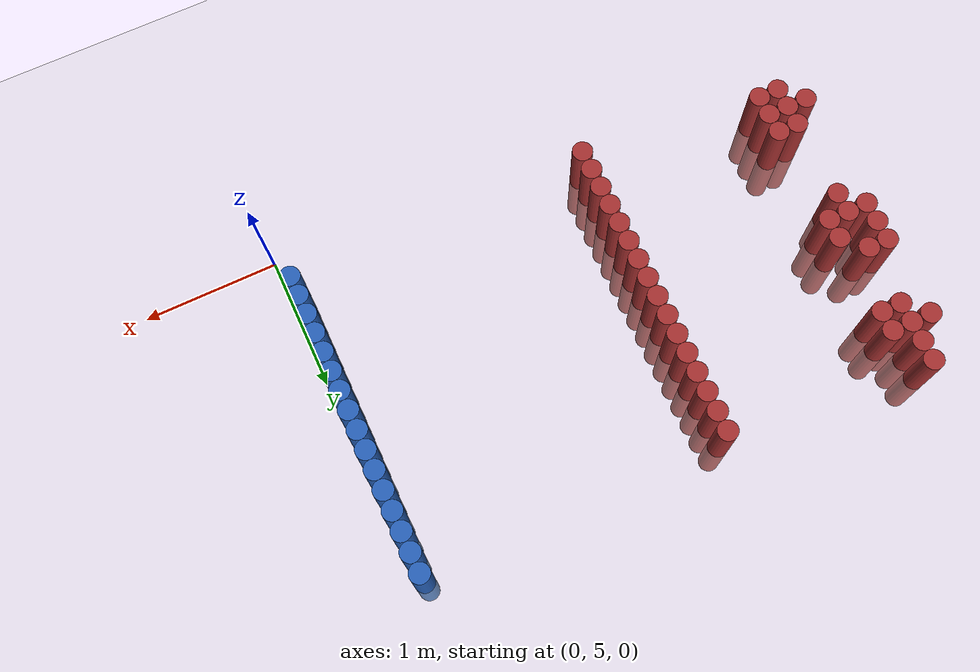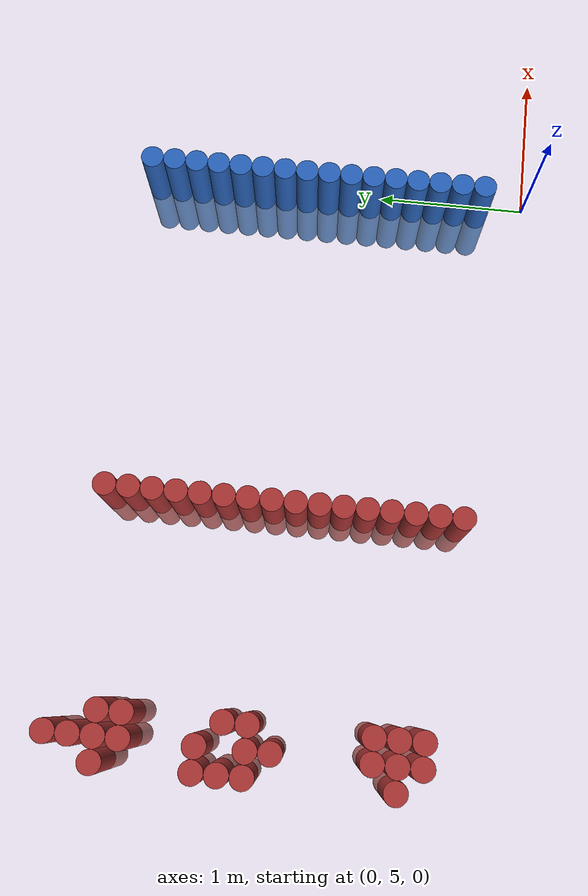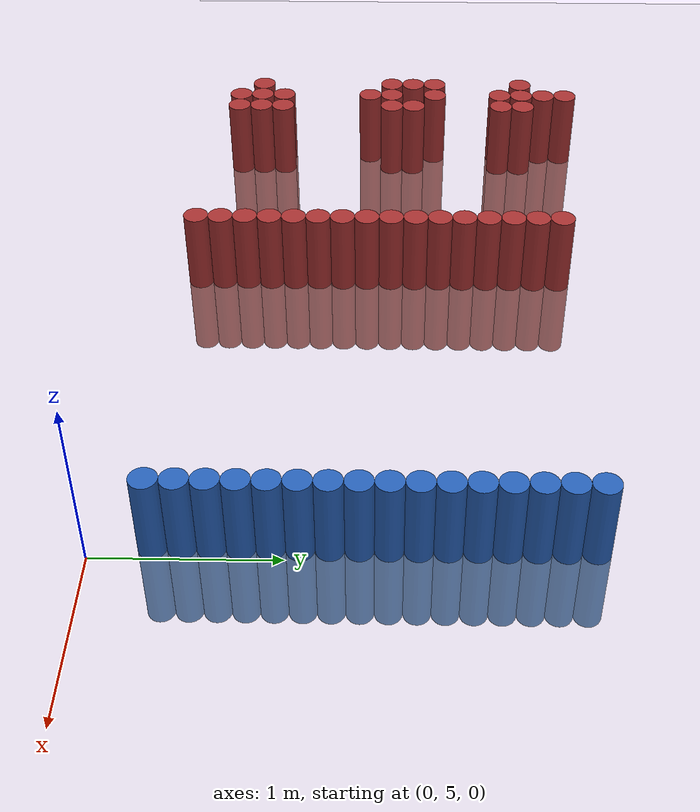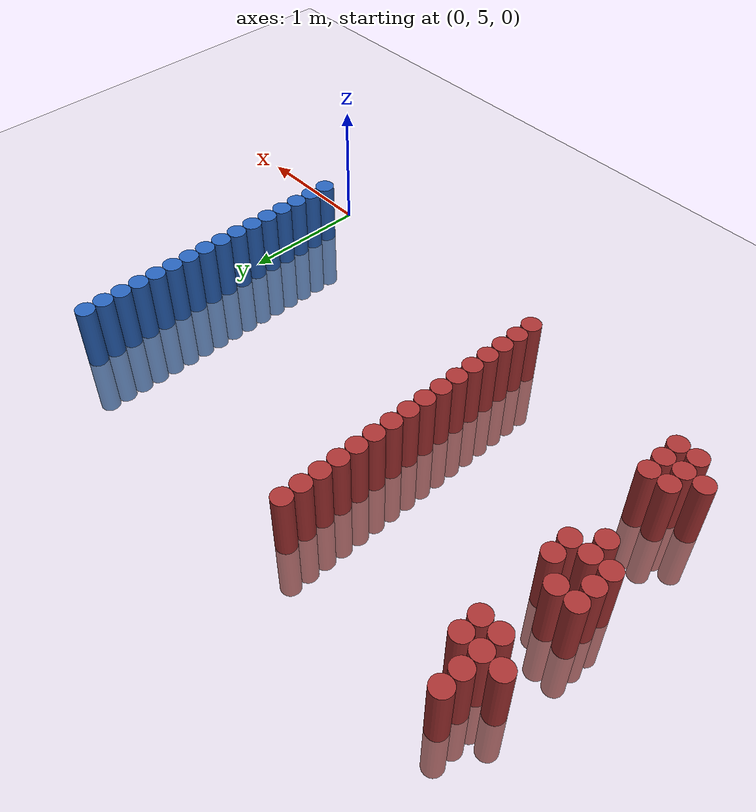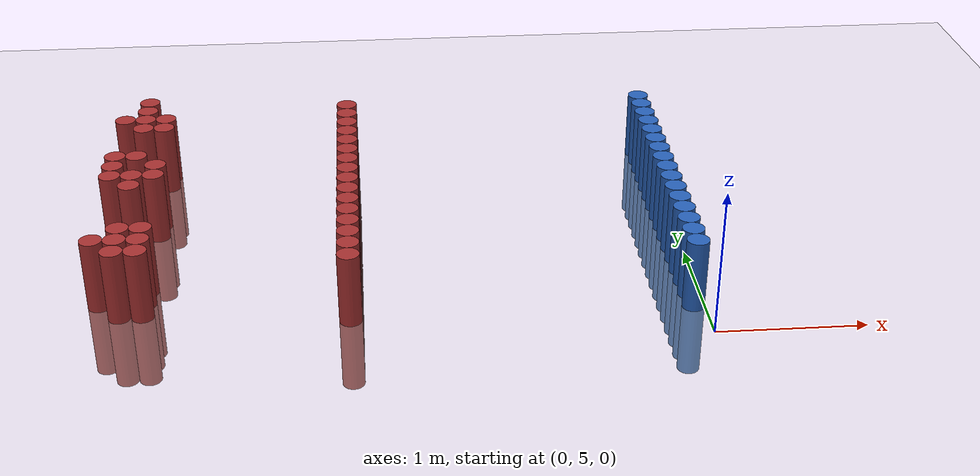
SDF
<sdf version="1.6">
 <world name="default">
  <model name="ground_plane">
   <static>1</static>
   <link name="link">
    <collision name="collision">
     <geometry><plane><normal>0 0 1</normal><size>100 100</size></plane></geometry>
     <surface><friction><ode><mu>100</mu><mu2>50</mu2></ode></friction></surface>
    </collision>
    <visual name="visual">
     <cast_shadows>0</cast_shadows>
     <geometry><plane><normal>0 0 1</normal><size>100 100</size></plane></geometry>
     <material>
      <script><uri>file://media/materials/scripts/gazebo.material</uri><name>Gazebo/Grey</name></script>
     </material>
    </visual>
   </link>
  </model>
  <model name="unit_cylinder_253">
   <static>1</static>
   <pose>-3.975000 5.625000 0.000000 0.000000 0.000000 0.000000</pose>
   <link name="link">
    <inertial>
     <mass>1</mass>
     <inertia><ixx>0.145833</ixx><ixy>0</ixy><ixz>0</ixz><iyy>0.145833</iyy><iyz>0</iyz><izz>0.125</izz></inertia>
    </inertial>
    <collision name="collision">
     <geometry><cylinder><radius>0.075000</radius><length>1</length></cylinder></geometry>
    </collision>
    <visual name="visual">
     <geometry><cylinder><radius>0.075000</radius><length>1</length></cylinder></geometry>
     <material>
      <ambient>0.648000 0.192000 0.192000 1</ambient>
      <diffuse>0.648000 0.192000 0.192000 1</diffuse>
     </material>
     <material>
      <script><name>Gazebo/Grey</name><uri>file://media/materials/scripts/gazebo.material</uri></script>
     </material>
    </visual>
   </link>
  </model>
  <model name="unit_cylinder_254">
   <static>1</static>
   <pose>-3.975000 6.525000 0.000000 0.000000 0.000000 0.000000</pose>
   <link name="link">
    <inertial>
     <mass>1</mass>
     <inertia><ixx>0.145833</ixx><ixy>0</ixy><ixz>0</ixz><iyy>0.145833</iyy><iyz>0</iyz><izz>0.125</izz></inertia>
    </inertial>
    <collision name="collision">
     <geometry><cylinder><radius>0.075000</radius><length>1</length></cylinder></geometry>
    </collision>
    <visual name="visual">
     <geometry><cylinder><radius>0.075000</radius><length>1</length></cylinder></geometry>
     <material>
      <ambient>0.648000 0.192000 0.192000 1</ambient>
      <diffuse>0.648000 0.192000 0.192000 1</diffuse>
     </material>
     <material>
      <script><name>Gazebo/Grey</name><uri>file://media/materials/scripts/gazebo.material</uri></script>
     </material>
    </visual>
   </link>
  </model>
  <model name="unit_cylinder_255">
   <static>1</static>
   <pose>-3.975000 6.675000 0.000000 0.000000 0.000000 0.000000</pose>
   <link name="link">
    <inertial>
     <mass>1</mass>
     <inertia><ixx>0.145833</ixx><ixy>0</ixy><ixz>0</ixz><iyy>0.145833</iyy><iyz>0</iyz><izz>0.125</izz></inertia>
    </inertial>
    <collision name="collision">
     <geometry><cylinder><radius>0.075000</radius><length>1</length></cylinder></geometry>
    </collision>
    <visual name="visual">
     <geometry><cylinder><radius>0.075000</radius><length>1</length></cylinder></geometry>
     <material>
      <ambient>0.648000 0.192000 0.192000 1</ambient>
      <diffuse>0.648000 0.192000 0.192000 1</diffuse>
     </material>
     <material>
      <script><name>Gazebo/Grey</name><uri>file://media/materials/scripts/gazebo.material</uri></script>
     </material>
    </visual>
   </link>
  </model>
  <model name="unit_cylinder_256">
   <static>1</static>
   <pose>-3.975000 6.825000 0.000000 0.000000 0.000000 0.000000</pose>
   <link name="link">
    <inertial>
     <mass>1</mass>
     <inertia><ixx>0.145833</ixx><ixy>0</ixy><ixz>0</ixz><iyy>0.145833</iyy><iyz>0</iyz><izz>0.125</izz></inertia>
    </inertial>
    <collision name="collision">
     <geometry><cylinder><radius>0.075000</radius><length>1</length></cylinder></geometry>
    </collision>
    <visual name="visual">
     <geometry><cylinder><radius>0.075000</radius><length>1</length></cylinder></geometry>
     <material>
      <ambient>0.648000 0.192000 0.192000 1</ambient>
      <diffuse>0.648000 0.192000 0.192000 1</diffuse>
     </material>
     <material>
      <script><name>Gazebo/Grey</name><uri>file://media/materials/scripts/gazebo.material</uri></script>
     </material>
    </visual>
   </link>
  </model>
  <model name="unit_cylinder_257">
   <static>1</static>
   <pose>-3.975000 7.425000 0.000000 0.000000 0.000000 0.000000</pose>
   <link name="link">
    <inertial>
     <mass>1</mass>
     <inertia><ixx>0.145833</ixx><ixy>0</ixy><ixz>0</ixz><iyy>0.145833</iyy><iyz>0</iyz><izz>0.125</izz></inertia>
    </inertial>
    <collision name="collision">
     <geometry><cylinder><radius>0.075000</radius><length>1</length></cylinder></geometry>
    </collision>
    <visual name="visual">
     <geometry><cylinder><radius>0.075000</radius><length>1</length></cylinder></geometry>
     <material>
      <ambient>0.648000 0.192000 0.192000 1</ambient>
      <diffuse>0.648000 0.192000 0.192000 1</diffuse>
     </material>
     <material>
      <script><name>Gazebo/Grey</name><uri>file://media/materials/scripts/gazebo.material</uri></script>
     </material>
    </visual>
   </link>
  </model>
  <model name="unit_cylinder_263">
   <static>1</static>
   <pose>-3.825000 5.475000 0.000000 0.000000 0.000000 0.000000</pose>
   <link name="link">
    <inertial>
     <mass>1</mass>
     <inertia><ixx>0.145833</ixx><ixy>0</ixy><ixz>0</ixz><iyy>0.145833</iyy><iyz>0</iyz><izz>0.125</izz></inertia>
    </inertial>
    <collision name="collision">
     <geometry><cylinder><radius>0.075000</radius><length>1</length></cylinder></geometry>
    </collision>
    <visual name="visual">
     <geometry><cylinder><radius>0.075000</radius><length>1</length></cylinder></geometry>
     <material>
      <ambient>0.648000 0.192000 0.192000 1</ambient>
      <diffuse>0.648000 0.192000 0.192000 1</diffuse>
     </material>
     <material>
      <script><name>Gazebo/Grey</name><uri>file://media/materials/scripts/gazebo.material</uri></script>
     </material>
    </visual>
   </link>
  </model>
  <model name="unit_cylinder_264">
   <static>1</static>
   <pose>-3.825000 5.625000 0.000000 0.000000 0.000000 0.000000</pose>
   <link name="link">
    <inertial>
     <mass>1</mass>
     <inertia><ixx>0.145833</ixx><ixy>0</ixy><ixz>0</ixz><iyy>0.145833</iyy><iyz>0</iyz><izz>0.125</izz></inertia>
    </inertial>
    <collision name="collision">
     <geometry><cylinder><radius>0.075000</radius><length>1</length></cylinder></geometry>
    </collision>
    <visual name="visual">
     <geometry><cylinder><radius>0.075000</radius><length>1</length></cylinder></geometry>
     <material>
      <ambient>0.648000 0.192000 0.192000 1</ambient>
      <diffuse>0.648000 0.192000 0.192000 1</diffuse>
     </material>
     <material>
      <script><name>Gazebo/Grey</name><uri>file://media/materials/scripts/gazebo.material</uri></script>
     </material>
    </visual>
   </link>
  </model>
  <model name="unit_cylinder_265">
   <static>1</static>
   <pose>-3.825000 5.775000 0.000000 0.000000 0.000000 0.000000</pose>
   <link name="link">
    <inertial>
     <mass>1</mass>
     <inertia><ixx>0.145833</ixx><ixy>0</ixy><ixz>0</ixz><iyy>0.145833</iyy><iyz>0</iyz><izz>0.125</izz></inertia>
    </inertial>
    <collision name="collision">
     <geometry><cylinder><radius>0.075000</radius><length>1</length></cylinder></geometry>
    </collision>
    <visual name="visual">
     <geometry><cylinder><radius>0.075000</radius><length>1</length></cylinder></geometry>
     <material>
      <ambient>0.648000 0.192000 0.192000 1</ambient>
      <diffuse>0.648000 0.192000 0.192000 1</diffuse>
     </material>
     <material>
      <script><name>Gazebo/Grey</name><uri>file://media/materials/scripts/gazebo.material</uri></script>
     </material>
    </visual>
   </link>
  </model>
  <model name="unit_cylinder_266">
   <static>1</static>
   <pose>-3.825000 6.375000 0.000000 0.000000 0.000000 0.000000</pose>
   <link name="link">
    <inertial>
     <mass>1</mass>
     <inertia><ixx>0.145833</ixx><ixy>0</ixy><ixz>0</ixz><iyy>0.145833</iyy><iyz>0</iyz><izz>0.125</izz></inertia>
    </inertial>
    <collision name="collision">
     <geometry><cylinder><radius>0.075000</radius><length>1</length></cylinder></geometry>
    </collision>
    <visual name="visual">
     <geometry><cylinder><radius>0.075000</radius><length>1</length></cylinder></geometry>
     <material>
      <ambient>0.648000 0.192000 0.192000 1</ambient>
      <diffuse>0.648000 0.192000 0.192000 1</diffuse>
     </material>
     <material>
      <script><name>Gazebo/Grey</name><uri>file://media/materials/scripts/gazebo.material</uri></script>
     </material>
    </visual>
   </link>
  </model>
  <model name="unit_cylinder_267">
   <static>1</static>
   <pose>-3.825000 6.525000 0.000000 0.000000 0.000000 0.000000</pose>
   <link name="link">
    <inertial>
     <mass>1</mass>
     <inertia><ixx>0.145833</ixx><ixy>0</ixy><ixz>0</ixz><iyy>0.145833</iyy><iyz>0</iyz><izz>0.125</izz></inertia>
    </inertial>
    <collision name="collision">
     <geometry><cylinder><radius>0.075000</radius><length>1</length></cylinder></geometry>
    </collision>
    <visual name="visual">
     <geometry><cylinder><radius>0.075000</radius><length>1</length></cylinder></geometry>
     <material>
      <ambient>0.648000 0.192000 0.192000 1</ambient>
      <diffuse>0.648000 0.192000 0.192000 1</diffuse>
     </material>
     <material>
      <script><name>Gazebo/Grey</name><uri>file://media/materials/scripts/gazebo.material</uri></script>
     </material>
    </visual>
   </link>
  </model>
  <model name="unit_cylinder_268">
   <static>1</static>
   <pose>-3.825000 6.825000 0.000000 0.000000 0.000000 0.000000</pose>
   <link name="link">
    <inertial>
     <mass>1</mass>
     <inertia><ixx>0.145833</ixx><ixy>0</ixy><ixz>0</ixz><iyy>0.145833</iyy><iyz>0</iyz><izz>0.125</izz></inertia>
    </inertial>
    <collision name="collision">
     <geometry><cylinder><radius>0.075000</radius><length>1</length></cylinder></geometry>
    </collision>
    <visual name="visual">
     <geometry><cylinder><radius>0.075000</radius><length>1</length></cylinder></geometry>
     <material>
      <ambient>0.648000 0.192000 0.192000 1</ambient>
      <diffuse>0.648000 0.192000 0.192000 1</diffuse>
     </material>
     <material>
      <script><name>Gazebo/Grey</name><uri>file://media/materials/scripts/gazebo.material</uri></script>
     </material>
    </visual>
   </link>
  </model>
  <model name="unit_cylinder_269">
   <static>1</static>
   <pose>-3.825000 7.275000 0.000000 0.000000 0.000000 0.000000</pose>
   <link name="link">
    <inertial>
     <mass>1</mass>
     <inertia><ixx>0.145833</ixx><ixy>0</ixy><ixz>0</ixz><iyy>0.145833</iyy><iyz>0</iyz><izz>0.125</izz></inertia>
    </inertial>
    <collision name="collision">
     <geometry><cylinder><radius>0.075000</radius><length>1</length></cylinder></geometry>
    </collision>
    <visual name="visual">
     <geometry><cylinder><radius>0.075000</radius><length>1</length></cylinder></geometry>
     <material>
      <ambient>0.648000 0.192000 0.192000 1</ambient>
      <diffuse>0.648000 0.192000 0.192000 1</diffuse>
     </material>
     <material>
      <script><name>Gazebo/Grey</name><uri>file://media/materials/scripts/gazebo.material</uri></script>
     </material>
    </visual>
   </link>
  </model>
  <model name="unit_cylinder_270">
   <static>1</static>
   <pose>-3.825000 7.425000 0.000000 0.000000 0.000000 0.000000</pose>
   <link name="link">
    <inertial>
     <mass>1</mass>
     <inertia><ixx>0.145833</ixx><ixy>0</ixy><ixz>0</ixz><iyy>0.145833</iyy><iyz>0</iyz><izz>0.125</izz></inertia>
    </inertial>
    <collision name="collision">
     <geometry><cylinder><radius>0.075000</radius><length>1</length></cylinder></geometry>
    </collision>
    <visual name="visual">
     <geometry><cylinder><radius>0.075000</radius><length>1</length></cylinder></geometry>
     <material>
      <ambient>0.648000 0.192000 0.192000 1</ambient>
      <diffuse>0.648000 0.192000 0.192000 1</diffuse>
     </material>
     <material>
      <script><name>Gazebo/Grey</name><uri>file://media/materials/scripts/gazebo.material</uri></script>
     </material>
    </visual>
   </link>
  </model>
  <model name="unit_cylinder_271">
   <static>1</static>
   <pose>-3.825000 7.575000 0.000000 0.000000 0.000000 0.000000</pose>
   <link name="link">
    <inertial>
     <mass>1</mass>
     <inertia><ixx>0.145833</ixx><ixy>0</ixy><ixz>0</ixz><iyy>0.145833</iyy><iyz>0</iyz><izz>0.125</izz></inertia>
    </inertial>
    <collision name="collision">
     <geometry><cylinder><radius>0.075000</radius><length>1</length></cylinder></geometry>
    </collision>
    <visual name="visual">
     <geometry><cylinder><radius>0.075000</radius><length>1</length></cylinder></geometry>
     <material>
      <ambient>0.648000 0.192000 0.192000 1</ambient>
      <diffuse>0.648000 0.192000 0.192000 1</diffuse>
     </material>
     <material>
      <script><name>Gazebo/Grey</name><uri>file://media/materials/scripts/gazebo.material</uri></script>
     </material>
    </visual>
   </link>
  </model>
  <model name="unit_cylinder_272">
   <static>1</static>
   <pose>-3.825000 7.725000 0.000000 0.000000 0.000000 0.000000</pose>
   <link name="link">
    <inertial>
     <mass>1</mass>
     <inertia><ixx>0.145833</ixx><ixy>0</ixy><ixz>0</ixz><iyy>0.145833</iyy><iyz>0</iyz><izz>0.125</izz></inertia>
    </inertial>
    <collision name="collision">
     <geometry><cylinder><radius>0.075000</radius><length>1</length></cylinder></geometry>
    </collision>
    <visual name="visual">
     <geometry><cylinder><radius>0.075000</radius><length>1</length></cylinder></geometry>
     <material>
      <ambient>0.648000 0.192000 0.192000 1</ambient>
      <diffuse>0.648000 0.192000 0.192000 1</diffuse>
     </material>
     <material>
      <script><name>Gazebo/Grey</name><uri>file://media/materials/scripts/gazebo.material</uri></script>
     </material>
    </visual>
   </link>
  </model>
  <model name="unit_cylinder_280">
   <static>1</static>
   <pose>-3.675000 5.475000 0.000000 0.000000 0.000000 0.000000</pose>
   <link name="link">
    <inertial>
     <mass>1</mass>
     <inertia><ixx>0.145833</ixx><ixy>0</ixy><ixz>0</ixz><iyy>0.145833</iyy><iyz>0</iyz><izz>0.125</izz></inertia>
    </inertial>
    <collision name="collision">
     <geometry><cylinder><radius>0.075000</radius><length>1</length></cylinder></geometry>
    </collision>
    <visual name="visual">
     <geometry><cylinder><radius>0.075000</radius><length>1</length></cylinder></geometry>
     <material>
      <ambient>0.648000 0.192000 0.192000 1</ambient>
      <diffuse>0.648000 0.192000 0.192000 1</diffuse>
     </material>
     <material>
      <script><name>Gazebo/Grey</name><uri>file://media/materials/scripts/gazebo.material</uri></script>
     </material>
    </visual>
   </link>
  </model>
  <model name="unit_cylinder_281">
   <static>1</static>
   <pose>-3.675000 5.625000 0.000000 0.000000 0.000000 0.000000</pose>
   <link name="link">
    <inertial>
     <mass>1</mass>
     <inertia><ixx>0.145833</ixx><ixy>0</ixy><ixz>0</ixz><iyy>0.145833</iyy><iyz>0</iyz><izz>0.125</izz></inertia>
    </inertial>
    <collision name="collision">
     <geometry><cylinder><radius>0.075000</radius><length>1</length></cylinder></geometry>
    </collision>
    <visual name="visual">
     <geometry><cylinder><radius>0.075000</radius><length>1</length></cylinder></geometry>
     <material>
      <ambient>0.648000 0.192000 0.192000 1</ambient>
      <diffuse>0.648000 0.192000 0.192000 1</diffuse>
     </material>
     <material>
      <script><name>Gazebo/Grey</name><uri>file://media/materials/scripts/gazebo.material</uri></script>
     </material>
    </visual>
   </link>
  </model>
  <model name="unit_cylinder_282">
   <static>1</static>
   <pose>-3.675000 5.775000 0.000000 0.000000 0.000000 0.000000</pose>
   <link name="link">
    <inertial>
     <mass>1</mass>
     <inertia><ixx>0.145833</ixx><ixy>0</ixy><ixz>0</ixz><iyy>0.145833</iyy><iyz>0</iyz><izz>0.125</izz></inertia>
    </inertial>
    <collision name="collision">
     <geometry><cylinder><radius>0.075000</radius><length>1</length></cylinder></geometry>
    </collision>
    <visual name="visual">
     <geometry><cylinder><radius>0.075000</radius><length>1</length></cylinder></geometry>
     <material>
      <ambient>0.648000 0.192000 0.192000 1</ambient>
      <diffuse>0.648000 0.192000 0.192000 1</diffuse>
     </material>
     <material>
      <script><name>Gazebo/Grey</name><uri>file://media/materials/scripts/gazebo.material</uri></script>
     </material>
    </visual>
   </link>
  </model>
  <model name="unit_cylinder_283">
   <static>1</static>
   <pose>-3.675000 6.525000 0.000000 0.000000 0.000000 0.000000</pose>
   <link name="link">
    <inertial>
     <mass>1</mass>
     <inertia><ixx>0.145833</ixx><ixy>0</ixy><ixz>0</ixz><iyy>0.145833</iyy><iyz>0</iyz><izz>0.125</izz></inertia>
    </inertial>
    <collision name="collision">
     <geometry><cylinder><radius>0.075000</radius><length>1</length></cylinder></geometry>
    </collision>
    <visual name="visual">
     <geometry><cylinder><radius>0.075000</radius><length>1</length></cylinder></geometry>
     <material>
      <ambient>0.648000 0.192000 0.192000 1</ambient>
      <diffuse>0.648000 0.192000 0.192000 1</diffuse>
     </material>
     <material>
      <script><name>Gazebo/Grey</name><uri>file://media/materials/scripts/gazebo.material</uri></script>
     </material>
    </visual>
   </link>
  </model>
  <model name="unit_cylinder_284">
   <static>1</static>
   <pose>-3.675000 6.675000 0.000000 0.000000 0.000000 0.000000</pose>
   <link name="link">
    <inertial>
     <mass>1</mass>
     <inertia><ixx>0.145833</ixx><ixy>0</ixy><ixz>0</ixz><iyy>0.145833</iyy><iyz>0</iyz><izz>0.125</izz></inertia>
    </inertial>
    <collision name="collision">
     <geometry><cylinder><radius>0.075000</radius><length>1</length></cylinder></geometry>
    </collision>
    <visual name="visual">
     <geometry><cylinder><radius>0.075000</radius><length>1</length></cylinder></geometry>
     <material>
      <ambient>0.648000 0.192000 0.192000 1</ambient>
      <diffuse>0.648000 0.192000 0.192000 1</diffuse>
     </material>
     <material>
      <script><name>Gazebo/Grey</name><uri>file://media/materials/scripts/gazebo.material</uri></script>
     </material>
    </visual>
   </link>
  </model>
  <model name="unit_cylinder_285">
   <static>1</static>
   <pose>-3.675000 7.275000 0.000000 0.000000 0.000000 0.000000</pose>
   <link name="link">
    <inertial>
     <mass>1</mass>
     <inertia><ixx>0.145833</ixx><ixy>0</ixy><ixz>0</ixz><iyy>0.145833</iyy><iyz>0</iyz><izz>0.125</izz></inertia>
    </inertial>
    <collision name="collision">
     <geometry><cylinder><radius>0.075000</radius><length>1</length></cylinder></geometry>
    </collision>
    <visual name="visual">
     <geometry><cylinder><radius>0.075000</radius><length>1</length></cylinder></geometry>
     <material>
      <ambient>0.648000 0.192000 0.192000 1</ambient>
      <diffuse>0.648000 0.192000 0.192000 1</diffuse>
     </material>
     <material>
      <script><name>Gazebo/Grey</name><uri>file://media/materials/scripts/gazebo.material</uri></script>
     </material>
    </visual>
   </link>
  </model>
  <model name="unit_cylinder_286">
   <static>1</static>
   <pose>-3.675000 7.425000 0.000000 0.000000 0.000000 0.000000</pose>
   <link name="link">
    <inertial>
     <mass>1</mass>
     <inertia><ixx>0.145833</ixx><ixy>0</ixy><ixz>0</ixz><iyy>0.145833</iyy><iyz>0</iyz><izz>0.125</izz></inertia>
    </inertial>
    <collision name="collision">
     <geometry><cylinder><radius>0.075000</radius><length>1</length></cylinder></geometry>
    </collision>
    <visual name="visual">
     <geometry><cylinder><radius>0.075000</radius><length>1</length></cylinder></geometry>
     <material>
      <ambient>0.648000 0.192000 0.192000 1</ambient>
      <diffuse>0.648000 0.192000 0.192000 1</diffuse>
     </material>
     <material>
      <script><name>Gazebo/Grey</name><uri>file://media/materials/scripts/gazebo.material</uri></script>
     </material>
    </visual>
   </link>
  </model>
  <model name="unit_cylinder_290">
   <static>1</static>
   <pose>-2.325000 5.325000 0.000000 0.000000 0.000000 0.000000</pose>
   <link name="link">
    <inertial>
     <mass>1</mass>
     <inertia><ixx>0.145833</ixx><ixy>0</ixy><ixz>0</ixz><iyy>0.145833</iyy><iyz>0</iyz><izz>0.125</izz></inertia>
    </inertial>
    <collision name="collision">
     <geometry><cylinder><radius>0.075000</radius><length>1</length></cylinder></geometry>
    </collision>
    <visual name="visual">
     <geometry><cylinder><radius>0.075000</radius><length>1</length></cylinder></geometry>
     <material>
      <ambient>0.648000 0.192000 0.192000 1</ambient>
      <diffuse>0.648000 0.192000 0.192000 1</diffuse>
     </material>
     <material>
      <script><name>Gazebo/Grey</name><uri>file://media/materials/scripts/gazebo.material</uri></script>
     </material>
    </visual>
   </link>
  </model>
  <model name="unit_cylinder_291">
   <static>1</static>
   <pose>-2.325000 5.475000 0.000000 0.000000 0.000000 0.000000</pose>
   <link name="link">
    <inertial>
     <mass>1</mass>
     <inertia><ixx>0.145833</ixx><ixy>0</ixy><ixz>0</ixz><iyy>0.145833</iyy><iyz>0</iyz><izz>0.125</izz></inertia>
    </inertial>
    <collision name="collision">
     <geometry><cylinder><radius>0.075000</radius><length>1</length></cylinder></geometry>
    </collision>
    <visual name="visual">
     <geometry><cylinder><radius>0.075000</radius><length>1</length></cylinder></geometry>
     <material>
      <ambient>0.648000 0.192000 0.192000 1</ambient>
      <diffuse>0.648000 0.192000 0.192000 1</diffuse>
     </material>
     <material>
      <script><name>Gazebo/Grey</name><uri>file://media/materials/scripts/gazebo.material</uri></script>
     </material>
    </visual>
   </link>
  </model>
  <model name="unit_cylinder_292">
   <static>1</static>
   <pose>-2.325000 5.625000 0.000000 0.000000 0.000000 0.000000</pose>
   <link name="link">
    <inertial>
     <mass>1</mass>
     <inertia><ixx>0.145833</ixx><ixy>0</ixy><ixz>0</ixz><iyy>0.145833</iyy><iyz>0</iyz><izz>0.125</izz></inertia>
    </inertial>
    <collision name="collision">
     <geometry><cylinder><radius>0.075000</radius><length>1</length></cylinder></geometry>
    </collision>
    <visual name="visual">
     <geometry><cylinder><radius>0.075000</radius><length>1</length></cylinder></geometry>
     <material>
      <ambient>0.648000 0.192000 0.192000 1</ambient>
      <diffuse>0.648000 0.192000 0.192000 1</diffuse>
     </material>
     <material>
      <script><name>Gazebo/Grey</name><uri>file://media/materials/scripts/gazebo.material</uri></script>
     </material>
    </visual>
   </link>
  </model>
  <model name="unit_cylinder_293">
   <static>1</static>
   <pose>-2.325000 5.775000 0.000000 0.000000 0.000000 0.000000</pose>
   <link name="link">
    <inertial>
     <mass>1</mass>
     <inertia><ixx>0.145833</ixx><ixy>0</ixy><ixz>0</ixz><iyy>0.145833</iyy><iyz>0</iyz><izz>0.125</izz></inertia>
    </inertial>
    <collision name="collision">
     <geometry><cylinder><radius>0.075000</radius><length>1</length></cylinder></geometry>
    </collision>
    <visual name="visual">
     <geometry><cylinder><radius>0.075000</radius><length>1</length></cylinder></geometry>
     <material>
      <ambient>0.648000 0.192000 0.192000 1</ambient>
      <diffuse>0.648000 0.192000 0.192000 1</diffuse>
     </material>
     <material>
      <script><name>Gazebo/Grey</name><uri>file://media/materials/scripts/gazebo.material</uri></script>
     </material>
    </visual>
   </link>
  </model>
  <model name="unit_cylinder_294">
   <static>1</static>
   <pose>-2.325000 5.925000 0.000000 0.000000 0.000000 0.000000</pose>
   <link name="link">
    <inertial>
     <mass>1</mass>
     <inertia><ixx>0.145833</ixx><ixy>0</ixy><ixz>0</ixz><iyy>0.145833</iyy><iyz>0</iyz><izz>0.125</izz></inertia>
    </inertial>
    <collision name="collision">
     <geometry><cylinder><radius>0.075000</radius><length>1</length></cylinder></geometry>
    </collision>
    <visual name="visual">
     <geometry><cylinder><radius>0.075000</radius><length>1</length></cylinder></geometry>
     <material>
      <ambient>0.648000 0.192000 0.192000 1</ambient>
      <diffuse>0.648000 0.192000 0.192000 1</diffuse>
     </material>
     <material>
      <script><name>Gazebo/Grey</name><uri>file://media/materials/scripts/gazebo.material</uri></script>
     </material>
    </visual>
   </link>
  </model>
  <model name="unit_cylinder_295">
   <static>1</static>
   <pose>-2.325000 6.075000 0.000000 0.000000 0.000000 0.000000</pose>
   <link name="link">
    <inertial>
     <mass>1</mass>
     <inertia><ixx>0.145833</ixx><ixy>0</ixy><ixz>0</ixz><iyy>0.145833</iyy><iyz>0</iyz><izz>0.125</izz></inertia>
    </inertial>
    <collision name="collision">
     <geometry><cylinder><radius>0.075000</radius><length>1</length></cylinder></geometry>
    </collision>
    <visual name="visual">
     <geometry><cylinder><radius>0.075000</radius><length>1</length></cylinder></geometry>
     <material>
      <ambient>0.648000 0.192000 0.192000 1</ambient>
      <diffuse>0.648000 0.192000 0.192000 1</diffuse>
     </material>
     <material>
      <script><name>Gazebo/Grey</name><uri>file://media/materials/scripts/gazebo.material</uri></script>
     </material>
    </visual>
   </link>
  </model>
  <model name="unit_cylinder_296">
   <static>1</static>
   <pose>-2.325000 6.225000 0.000000 0.000000 0.000000 0.000000</pose>
   <link name="link">
    <inertial>
     <mass>1</mass>
     <inertia><ixx>0.145833</ixx><ixy>0</ixy><ixz>0</ixz><iyy>0.145833</iyy><iyz>0</iyz><izz>0.125</izz></inertia>
    </inertial>
    <collision name="collision">
     <geometry><cylinder><radius>0.075000</radius><length>1</length></cylinder></geometry>
    </collision>
    <visual name="visual">
     <geometry><cylinder><radius>0.075000</radius><length>1</length></cylinder></geometry>
     <material>
      <ambient>0.648000 0.192000 0.192000 1</ambient>
      <diffuse>0.648000 0.192000 0.192000 1</diffuse>
     </material>
     <material>
      <script><name>Gazebo/Grey</name><uri>file://media/materials/scripts/gazebo.material</uri></script>
     </material>
    </visual>
   </link>
  </model>
  <model name="unit_cylinder_297">
   <static>1</static>
   <pose>-2.325000 6.375000 0.000000 0.000000 0.000000 0.000000</pose>
   <link name="link">
    <inertial>
     <mass>1</mass>
     <inertia><ixx>0.145833</ixx><ixy>0</ixy><ixz>0</ixz><iyy>0.145833</iyy><iyz>0</iyz><izz>0.125</izz></inertia>
    </inertial>
    <collision name="collision">
     <geometry><cylinder><radius>0.075000</radius><length>1</length></cylinder></geometry>
    </collision>
    <visual name="visual">
     <geometry><cylinder><radius>0.075000</radius><length>1</length></cylinder></geometry>
     <material>
      <ambient>0.648000 0.192000 0.192000 1</ambient>
      <diffuse>0.648000 0.192000 0.192000 1</diffuse>
     </material>
     <material>
      <script><name>Gazebo/Grey</name><uri>file://media/materials/scripts/gazebo.material</uri></script>
     </material>
    </visual>
   </link>
  </model>
  <model name="unit_cylinder_298">
   <static>1</static>
   <pose>-2.325000 6.525000 0.000000 0.000000 0.000000 0.000000</pose>
   <link name="link">
    <inertial>
     <mass>1</mass>
     <inertia><ixx>0.145833</ixx><ixy>0</ixy><ixz>0</ixz><iyy>0.145833</iyy><iyz>0</iyz><izz>0.125</izz></inertia>
    </inertial>
    <collision name="collision">
     <geometry><cylinder><radius>0.075000</radius><length>1</length></cylinder></geometry>
    </collision>
    <visual name="visual">
     <geometry><cylinder><radius>0.075000</radius><length>1</length></cylinder></geometry>
     <material>
      <ambient>0.648000 0.192000 0.192000 1</ambient>
      <diffuse>0.648000 0.192000 0.192000 1</diffuse>
     </material>
     <material>
      <script><name>Gazebo/Grey</name><uri>file://media/materials/scripts/gazebo.material</uri></script>
     </material>
    </visual>
   </link>
  </model>
  <model name="unit_cylinder_299">
   <static>1</static>
   <pose>-2.325000 6.675000 0.000000 0.000000 0.000000 0.000000</pose>
   <link name="link">
    <inertial>
     <mass>1</mass>
     <inertia><ixx>0.145833</ixx><ixy>0</ixy><ixz>0</ixz><iyy>0.145833</iyy><iyz>0</iyz><izz>0.125</izz></inertia>
    </inertial>
    <collision name="collision">
     <geometry><cylinder><radius>0.075000</radius><length>1</length></cylinder></geometry>
    </collision>
    <visual name="visual">
     <geometry><cylinder><radius>0.075000</radius><length>1</length></cylinder></geometry>
     <material>
      <ambient>0.648000 0.192000 0.192000 1</ambient>
      <diffuse>0.648000 0.192000 0.192000 1</diffuse>
     </material>
     <material>
      <script><name>Gazebo/Grey</name><uri>file://media/materials/scripts/gazebo.material</uri></script>
     </material>
    </visual>
   </link>
  </model>
  <model name="unit_cylinder_300">
   <static>1</static>
   <pose>-2.325000 6.825000 0.000000 0.000000 0.000000 0.000000</pose>
   <link name="link">
    <inertial>
     <mass>1</mass>
     <inertia><ixx>0.145833</ixx><ixy>0</ixy><ixz>0</ixz><iyy>0.145833</iyy><iyz>0</iyz><izz>0.125</izz></inertia>
    </inertial>
    <collision name="collision">
     <geometry><cylinder><radius>0.075000</radius><length>1</length></cylinder></geometry>
    </collision>
    <visual name="visual">
     <geometry><cylinder><radius>0.075000</radius><length>1</length></cylinder></geometry>
     <material>
      <ambient>0.648000 0.192000 0.192000 1</ambient>
      <diffuse>0.648000 0.192000 0.192000 1</diffuse>
     </material>
     <material>
      <script><name>Gazebo/Grey</name><uri>file://media/materials/scripts/gazebo.material</uri></script>
     </material>
    </visual>
   </link>
  </model>
  <model name="unit_cylinder_301">
   <static>1</static>
   <pose>-2.325000 6.975000 0.000000 0.000000 0.000000 0.000000</pose>
   <link name="link">
    <inertial>
     <mass>1</mass>
     <inertia><ixx>0.145833</ixx><ixy>0</ixy><ixz>0</ixz><iyy>0.145833</iyy><iyz>0</iyz><izz>0.125</izz></inertia>
    </inertial>
    <collision name="collision">
     <geometry><cylinder><radius>0.075000</radius><length>1</length></cylinder></geometry>
    </collision>
    <visual name="visual">
     <geometry><cylinder><radius>0.075000</radius><length>1</length></cylinder></geometry>
     <material>
      <ambient>0.648000 0.192000 0.192000 1</ambient>
      <diffuse>0.648000 0.192000 0.192000 1</diffuse>
     </material>
     <material>
      <script><name>Gazebo/Grey</name><uri>file://media/materials/scripts/gazebo.material</uri></script>
     </material>
    </visual>
   </link>
  </model>
  <model name="unit_cylinder_302">
   <static>1</static>
   <pose>-2.325000 7.125000 0.000000 0.000000 0.000000 0.000000</pose>
   <link name="link">
    <inertial>
     <mass>1</mass>
     <inertia><ixx>0.145833</ixx><ixy>0</ixy><ixz>0</ixz><iyy>0.145833</iyy><iyz>0</iyz><izz>0.125</izz></inertia>
    </inertial>
    <collision name="collision">
     <geometry><cylinder><radius>0.075000</radius><length>1</length></cylinder></geometry>
    </collision>
    <visual name="visual">
     <geometry><cylinder><radius>0.075000</radius><length>1</length></cylinder></geometry>
     <material>
      <ambient>0.648000 0.192000 0.192000 1</ambient>
      <diffuse>0.648000 0.192000 0.192000 1</diffuse>
     </material>
     <material>
      <script><name>Gazebo/Grey</name><uri>file://media/materials/scripts/gazebo.material</uri></script>
     </material>
    </visual>
   </link>
  </model>
  <model name="unit_cylinder_303">
   <static>1</static>
   <pose>-2.325000 7.275000 0.000000 0.000000 0.000000 0.000000</pose>
   <link name="link">
    <inertial>
     <mass>1</mass>
     <inertia><ixx>0.145833</ixx><ixy>0</ixy><ixz>0</ixz><iyy>0.145833</iyy><iyz>0</iyz><izz>0.125</izz></inertia>
    </inertial>
    <collision name="collision">
     <geometry><cylinder><radius>0.075000</radius><length>1</length></cylinder></geometry>
    </collision>
    <visual name="visual">
     <geometry><cylinder><radius>0.075000</radius><length>1</length></cylinder></geometry>
     <material>
      <ambient>0.648000 0.192000 0.192000 1</ambient>
      <diffuse>0.648000 0.192000 0.192000 1</diffuse>
     </material>
     <material>
      <script><name>Gazebo/Grey</name><uri>file://media/materials/scripts/gazebo.material</uri></script>
     </material>
    </visual>
   </link>
  </model>
  <model name="unit_cylinder_304">
   <static>1</static>
   <pose>-2.325000 7.425000 0.000000 0.000000 0.000000 0.000000</pose>
   <link name="link">
    <inertial>
     <mass>1</mass>
     <inertia><ixx>0.145833</ixx><ixy>0</ixy><ixz>0</ixz><iyy>0.145833</iyy><iyz>0</iyz><izz>0.125</izz></inertia>
    </inertial>
    <collision name="collision">
     <geometry><cylinder><radius>0.075000</radius><length>1</length></cylinder></geometry>
    </collision>
    <visual name="visual">
     <geometry><cylinder><radius>0.075000</radius><length>1</length></cylinder></geometry>
     <material>
      <ambient>0.648000 0.192000 0.192000 1</ambient>
      <diffuse>0.648000 0.192000 0.192000 1</diffuse>
     </material>
     <material>
      <script><name>Gazebo/Grey</name><uri>file://media/materials/scripts/gazebo.material</uri></script>
     </material>
    </visual>
   </link>
  </model>
  <model name="unit_cylinder_305">
   <static>1</static>
   <pose>-2.325000 7.575000 0.000000 0.000000 0.000000 0.000000</pose>
   <link name="link">
    <inertial>
     <mass>1</mass>
     <inertia><ixx>0.145833</ixx><ixy>0</ixy><ixz>0</ixz><iyy>0.145833</iyy><iyz>0</iyz><izz>0.125</izz></inertia>
    </inertial>
    <collision name="collision">
     <geometry><cylinder><radius>0.075000</radius><length>1</length></cylinder></geometry>
    </collision>
    <visual name="visual">
     <geometry><cylinder><radius>0.075000</radius><length>1</length></cylinder></geometry>
     <material>
      <ambient>0.648000 0.192000 0.192000 1</ambient>
      <diffuse>0.648000 0.192000 0.192000 1</diffuse>
     </material>
     <material>
      <script><name>Gazebo/Grey</name><uri>file://media/materials/scripts/gazebo.material</uri></script>
     </material>
    </visual>
   </link>
  </model>
  <model name="unit_cylinder_348">
   <static>1</static>
   <pose>-0.075000 5.325000 0.000000 0.000000 0.000000 0.000000</pose>
   <link name="link">
    <inertial>
     <mass>1</mass>
     <inertia><ixx>0.145833</ixx><ixy>0</ixy><ixz>0</ixz><iyy>0.145833</iyy><iyz>0</iyz><izz>0.125</izz></inertia>
    </inertial>
    <collision name="collision">
     <geometry><cylinder><radius>0.075000</radius><length>1</length></cylinder></geometry>
    </collision>
    <visual name="visual">
     <geometry><cylinder><radius>0.075000</radius><length>1</length></cylinder></geometry>
     <material>
      <ambient>0.152000 0.379000 0.720000 1</ambient>
      <diffuse>0.152000 0.379000 0.720000 1</diffuse>
     </material>
     <material>
      <script><name>Gazebo/Grey</name><uri>file://media/materials/scripts/gazebo.material</uri></script>
     </material>
    </visual>
   </link>
  </model>
  <model name="unit_cylinder_349">
   <static>1</static>
   <pose>-0.075000 5.475000 0.000000 0.000000 0.000000 0.000000</pose>
   <link name="link">
    <inertial>
     <mass>1</mass>
     <inertia><ixx>0.145833</ixx><ixy>0</ixy><ixz>0</ixz><iyy>0.145833</iyy><iyz>0</iyz><izz>0.125</izz></inertia>
    </inertial>
    <collision name="collision">
     <geometry><cylinder><radius>0.075000</radius><length>1</length></cylinder></geometry>
    </collision>
    <visual name="visual">
     <geometry><cylinder><radius>0.075000</radius><length>1</length></cylinder></geometry>
     <material>
      <ambient>0.152000 0.379000 0.720000 1</ambient>
      <diffuse>0.152000 0.379000 0.720000 1</diffuse>
     </material>
     <material>
      <script><name>Gazebo/Grey</name><uri>file://media/materials/scripts/gazebo.material</uri></script>
     </material>
    </visual>
   </link>
  </model>
  <model name="unit_cylinder_350">
   <static>1</static>
   <pose>-0.075000 5.625000 0.000000 0.000000 0.000000 0.000000</pose>
   <link name="link">
    <inertial>
     <mass>1</mass>
     <inertia><ixx>0.145833</ixx><ixy>0</ixy><ixz>0</ixz><iyy>0.145833</iyy><iyz>0</iyz><izz>0.125</izz></inertia>
    </inertial>
    <collision name="collision">
     <geometry><cylinder><radius>0.075000</radius><length>1</length></cylinder></geometry>
    </collision>
    <visual name="visual">
     <geometry><cylinder><radius>0.075000</radius><length>1</length></cylinder></geometry>
     <material>
      <ambient>0.152000 0.379000 0.720000 1</ambient>
      <diffuse>0.152000 0.379000 0.720000 1</diffuse>
     </material>
     <material>
      <script><name>Gazebo/Grey</name><uri>file://media/materials/scripts/gazebo.material</uri></script>
     </material>
    </visual>
   </link>
  </model>
  <model name="unit_cylinder_351">
   <static>1</static>
   <pose>-0.075000 5.775000 0.000000 0.000000 0.000000 0.000000</pose>
   <link name="link">
    <inertial>
     <mass>1</mass>
     <inertia><ixx>0.145833</ixx><ixy>0</ixy><ixz>0</ixz><iyy>0.145833</iyy><iyz>0</iyz><izz>0.125</izz></inertia>
    </inertial>
    <collision name="collision">
     <geometry><cylinder><radius>0.075000</radius><length>1</length></cylinder></geometry>
    </collision>
    <visual name="visual">
     <geometry><cylinder><radius>0.075000</radius><length>1</length></cylinder></geometry>
     <material>
      <ambient>0.152000 0.379000 0.720000 1</ambient>
      <diffuse>0.152000 0.379000 0.720000 1</diffuse>
     </material>
     <material>
      <script><name>Gazebo/Grey</name><uri>file://media/materials/scripts/gazebo.material</uri></script>
     </material>
    </visual>
   </link>
  </model>
  <model name="unit_cylinder_352">
   <static>1</static>
   <pose>-0.075000 5.925000 0.000000 0.000000 0.000000 0.000000</pose>
   <link name="link">
    <inertial>
     <mass>1</mass>
     <inertia><ixx>0.145833</ixx><ixy>0</ixy><ixz>0</ixz><iyy>0.145833</iyy><iyz>0</iyz><izz>0.125</izz></inertia>
    </inertial>
    <collision name="collision">
     <geometry><cylinder><radius>0.075000</radius><length>1</length></cylinder></geometry>
    </collision>
    <visual name="visual">
     <geometry><cylinder><radius>0.075000</radius><length>1</length></cylinder></geometry>
     <material>
      <ambient>0.152000 0.379000 0.720000 1</ambient>
      <diffuse>0.152000 0.379000 0.720000 1</diffuse>
     </material>
     <material>
      <script><name>Gazebo/Grey</name><uri>file://media/materials/scripts/gazebo.material</uri></script>
     </material>
    </visual>
   </link>
  </model>
  <model name="unit_cylinder_353">
   <static>1</static>
   <pose>-0.075000 6.075000 0.000000 0.000000 0.000000 0.000000</pose>
   <link name="link">
    <inertial>
     <mass>1</mass>
     <inertia><ixx>0.145833</ixx><ixy>0</ixy><ixz>0</ixz><iyy>0.145833</iyy><iyz>0</iyz><izz>0.125</izz></inertia>
    </inertial>
    <collision name="collision">
     <geometry><cylinder><radius>0.075000</radius><length>1</length></cylinder></geometry>
    </collision>
    <visual name="visual">
     <geometry><cylinder><radius>0.075000</radius><length>1</length></cylinder></geometry>
     <material>
      <ambient>0.152000 0.379000 0.720000 1</ambient>
      <diffuse>0.152000 0.379000 0.720000 1</diffuse>
     </material>
     <material>
      <script><name>Gazebo/Grey</name><uri>file://media/materials/scripts/gazebo.material</uri></script>
     </material>
    </visual>
   </link>
  </model>
  <model name="unit_cylinder_354">
   <static>1</static>
   <pose>-0.075000 6.225000 0.000000 0.000000 0.000000 0.000000</pose>
   <link name="link">
    <inertial>
     <mass>1</mass>
     <inertia><ixx>0.145833</ixx><ixy>0</ixy><ixz>0</ixz><iyy>0.145833</iyy><iyz>0</iyz><izz>0.125</izz></inertia>
    </inertial>
    <collision name="collision">
     <geometry><cylinder><radius>0.075000</radius><length>1</length></cylinder></geometry>
    </collision>
    <visual name="visual">
     <geometry><cylinder><radius>0.075000</radius><length>1</length></cylinder></geometry>
     <material>
      <ambient>0.152000 0.379000 0.720000 1</ambient>
      <diffuse>0.152000 0.379000 0.720000 1</diffuse>
     </material>
     <material>
      <script><name>Gazebo/Grey</name><uri>file://media/materials/scripts/gazebo.material</uri></script>
     </material>
    </visual>
   </link>
  </model>
  <model name="unit_cylinder_355">
   <static>1</static>
   <pose>-0.075000 6.375000 0.000000 0.000000 0.000000 0.000000</pose>
   <link name="link">
    <inertial>
     <mass>1</mass>
     <inertia><ixx>0.145833</ixx><ixy>0</ixy><ixz>0</ixz><iyy>0.145833</iyy><iyz>0</iyz><izz>0.125</izz></inertia>
    </inertial>
    <collision name="collision">
     <geometry><cylinder><radius>0.075000</radius><length>1</length></cylinder></geometry>
    </collision>
    <visual name="visual">
     <geometry><cylinder><radius>0.075000</radius><length>1</length></cylinder></geometry>
     <material>
      <ambient>0.152000 0.379000 0.720000 1</ambient>
      <diffuse>0.152000 0.379000 0.720000 1</diffuse>
     </material>
     <material>
      <script><name>Gazebo/Grey</name><uri>file://media/materials/scripts/gazebo.material</uri></script>
     </material>
    </visual>
   </link>
  </model>
  <model name="unit_cylinder_356">
   <static>1</static>
   <pose>-0.075000 6.525000 0.000000 0.000000 0.000000 0.000000</pose>
   <link name="link">
    <inertial>
     <mass>1</mass>
     <inertia><ixx>0.145833</ixx><ixy>0</ixy><ixz>0</ixz><iyy>0.145833</iyy><iyz>0</iyz><izz>0.125</izz></inertia>
    </inertial>
    <collision name="collision">
     <geometry><cylinder><radius>0.075000</radius><length>1</length></cylinder></geometry>
    </collision>
    <visual name="visual">
     <geometry><cylinder><radius>0.075000</radius><length>1</length></cylinder></geometry>
     <material>
      <ambient>0.152000 0.379000 0.720000 1</ambient>
      <diffuse>0.152000 0.379000 0.720000 1</diffuse>
     </material>
     <material>
      <script><name>Gazebo/Grey</name><uri>file://media/materials/scripts/gazebo.material</uri></script>
     </material>
    </visual>
   </link>
  </model>
  <model name="unit_cylinder_357">
   <static>1</static>
   <pose>-0.075000 6.675000 0.000000 0.000000 0.000000 0.000000</pose>
   <link name="link">
    <inertial>
     <mass>1</mass>
     <inertia><ixx>0.145833</ixx><ixy>0</ixy><ixz>0</ixz><iyy>0.145833</iyy><iyz>0</iyz><izz>0.125</izz></inertia>
    </inertial>
    <collision name="collision">
     <geometry><cylinder><radius>0.075000</radius><length>1</length></cylinder></geometry>
    </collision>
    <visual name="visual">
     <geometry><cylinder><radius>0.075000</radius><length>1</length></cylinder></geometry>
     <material>
      <ambient>0.152000 0.379000 0.720000 1</ambient>
      <diffuse>0.152000 0.379000 0.720000 1</diffuse>
     </material>
     <material>
      <script><name>Gazebo/Grey</name><uri>file://media/materials/scripts/gazebo.material</uri></script>
     </material>
    </visual>
   </link>
  </model>
  <model name="unit_cylinder_358">
   <static>1</static>
   <pose>-0.075000 6.825000 0.000000 0.000000 0.000000 0.000000</pose>
   <link name="link">
    <inertial>
     <mass>1</mass>
     <inertia><ixx>0.145833</ixx><ixy>0</ixy><ixz>0</ixz><iyy>0.145833</iyy><iyz>0</iyz><izz>0.125</izz></inertia>
    </inertial>
    <collision name="collision">
     <geometry><cylinder><radius>0.075000</radius><length>1</length></cylinder></geometry>
    </collision>
    <visual name="visual">
     <geometry><cylinder><radius>0.075000</radius><length>1</length></cylinder></geometry>
     <material>
      <ambient>0.152000 0.379000 0.720000 1</ambient>
      <diffuse>0.152000 0.379000 0.720000 1</diffuse>
     </material>
     <material>
      <script><name>Gazebo/Grey</name><uri>file://media/materials/scripts/gazebo.material</uri></script>
     </material>
    </visual>
   </link>
  </model>
  <model name="unit_cylinder_359">
   <static>1</static>
   <pose>-0.075000 6.975000 0.000000 0.000000 0.000000 0.000000</pose>
   <link name="link">
    <inertial>
     <mass>1</mass>
     <inertia><ixx>0.145833</ixx><ixy>0</ixy><ixz>0</ixz><iyy>0.145833</iyy><iyz>0</iyz><izz>0.125</izz></inertia>
    </inertial>
    <collision name="collision">
     <geometry><cylinder><radius>0.075000</radius><length>1</length></cylinder></geometry>
    </collision>
    <visual name="visual">
     <geometry><cylinder><radius>0.075000</radius><length>1</length></cylinder></geometry>
     <material>
      <ambient>0.152000 0.379000 0.720000 1</ambient>
      <diffuse>0.152000 0.379000 0.720000 1</diffuse>
     </material>
     <material>
      <script><name>Gazebo/Grey</name><uri>file://media/materials/scripts/gazebo.material</uri></script>
     </material>
    </visual>
   </link>
  </model>
  <model name="unit_cylinder_360">
   <static>1</static>
   <pose>-0.075000 7.125000 0.000000 0.000000 0.000000 0.000000</pose>
   <link name="link">
    <inertial>
     <mass>1</mass>
     <inertia><ixx>0.145833</ixx><ixy>0</ixy><ixz>0</ixz><iyy>0.145833</iyy><iyz>0</iyz><izz>0.125</izz></inertia>
    </inertial>
    <collision name="collision">
     <geometry><cylinder><radius>0.075000</radius><length>1</length></cylinder></geometry>
    </collision>
    <visual name="visual">
     <geometry><cylinder><radius>0.075000</radius><length>1</length></cylinder></geometry>
     <material>
      <ambient>0.152000 0.379000 0.720000 1</ambient>
      <diffuse>0.152000 0.379000 0.720000 1</diffuse>
     </material>
     <material>
      <script><name>Gazebo/Grey</name><uri>file://media/materials/scripts/gazebo.material</uri></script>
     </material>
    </visual>
   </link>
  </model>
  <model name="unit_cylinder_361">
   <static>1</static>
   <pose>-0.075000 7.275000 0.000000 0.000000 0.000000 0.000000</pose>
   <link name="link">
    <inertial>
     <mass>1</mass>
     <inertia><ixx>0.145833</ixx><ixy>0</ixy><ixz>0</ixz><iyy>0.145833</iyy><iyz>0</iyz><izz>0.125</izz></inertia>
    </inertial>
    <collision name="collision">
     <geometry><cylinder><radius>0.075000</radius><length>1</length></cylinder></geometry>
    </collision>
    <visual name="visual">
     <geometry><cylinder><radius>0.075000</radius><length>1</length></cylinder></geometry>
     <material>
      <ambient>0.152000 0.379000 0.720000 1</ambient>
      <diffuse>0.152000 0.379000 0.720000 1</diffuse>
     </material>
     <material>
      <script><name>Gazebo/Grey</name><uri>file://media/materials/scripts/gazebo.material</uri></script>
     </material>
    </visual>
   </link>
  </model>
  <model name="unit_cylinder_362">
   <static>1</static>
   <pose>-0.075000 7.425000 0.000000 0.000000 0.000000 0.000000</pose>
   <link name="link">
    <inertial>
     <mass>1</mass>
     <inertia><ixx>0.145833</ixx><ixy>0</ixy><ixz>0</ixz><iyy>0.145833</iyy><iyz>0</iyz><izz>0.125</izz></inertia>
    </inertial>
    <collision name="collision">
     <geometry><cylinder><radius>0.075000</radius><length>1</length></cylinder></geometry>
    </collision>
    <visual name="visual">
     <geometry><cylinder><radius>0.075000</radius><length>1</length></cylinder></geometry>
     <material>
      <ambient>0.152000 0.379000 0.720000 1</ambient>
      <diffuse>0.152000 0.379000 0.720000 1</diffuse>
     </material>
     <material>
      <script><name>Gazebo/Grey</name><uri>file://media/materials/scripts/gazebo.material</uri></script>
     </material>
    </visual>
   </link>
  </model>
  <model name="unit_cylinder_363">
   <static>1</static>
   <pose>-0.075000 7.575000 0.000000 0.000000 0.000000 0.000000</pose>
   <link name="link">
    <inertial>
     <mass>1</mass>
     <inertia><ixx>0.145833</ixx><ixy>0</ixy><ixz>0</ixz><iyy>0.145833</iyy><iyz>0</iyz><izz>0.125</izz></inertia>
    </inertial>
    <collision name="collision">
     <geometry><cylinder><radius>0.075000</radius><length>1</length></cylinder></geometry>
    </collision>
    <visual name="visual">
     <geometry><cylinder><radius>0.075000</radius><length>1</length></cylinder></geometry>
     <material>
      <ambient>0.152000 0.379000 0.720000 1</ambient>
      <diffuse>0.152000 0.379000 0.720000 1</diffuse>
     </material>
     <material>
      <script><name>Gazebo/Grey</name><uri>file://media/materials/scripts/gazebo.material</uri></script>
     </material>
    </visual>
   </link>
  </model>
 </world>
</sdf>
